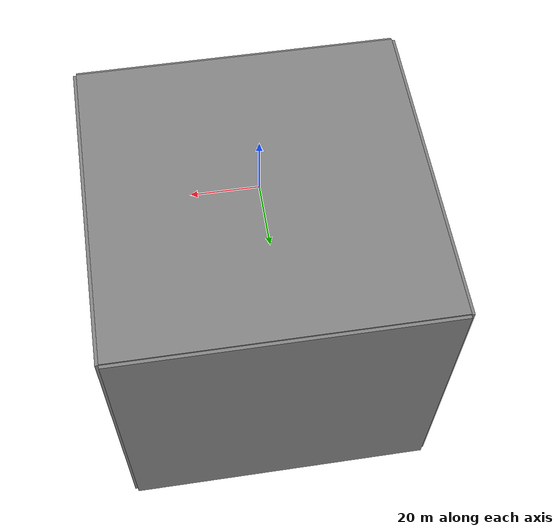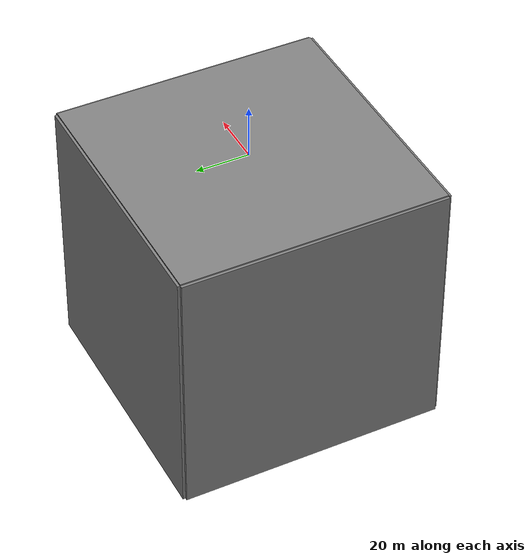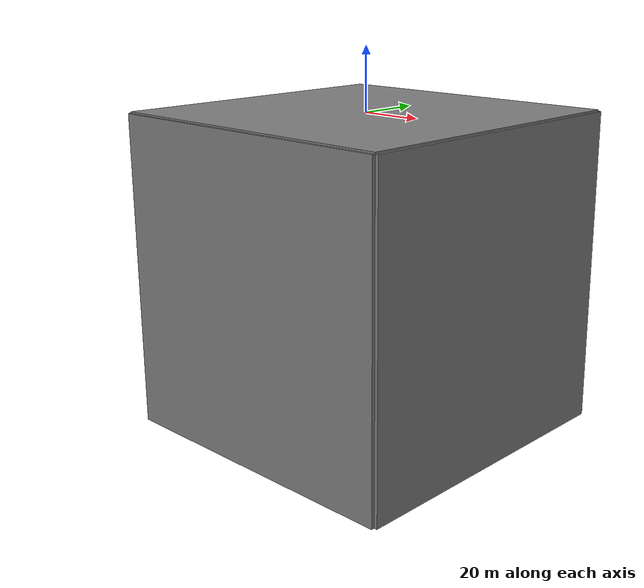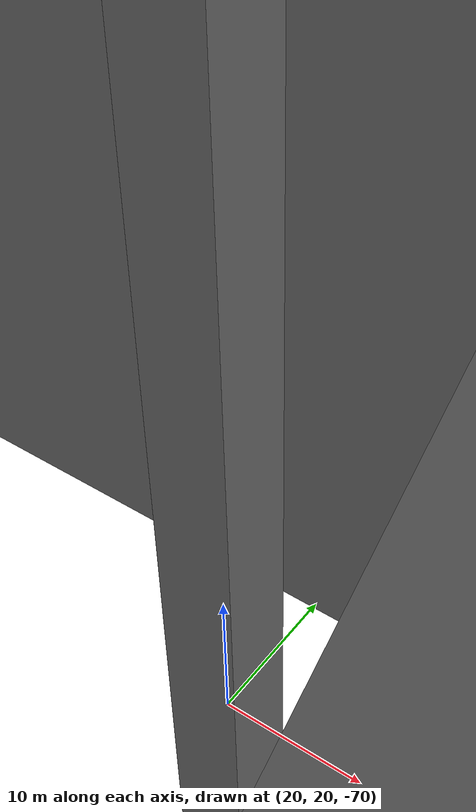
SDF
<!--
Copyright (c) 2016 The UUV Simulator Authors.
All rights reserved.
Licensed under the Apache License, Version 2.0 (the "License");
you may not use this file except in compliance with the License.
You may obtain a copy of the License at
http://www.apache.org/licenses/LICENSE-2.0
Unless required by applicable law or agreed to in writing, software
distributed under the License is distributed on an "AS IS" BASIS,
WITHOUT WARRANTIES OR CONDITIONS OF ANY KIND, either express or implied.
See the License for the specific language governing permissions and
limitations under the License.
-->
<sdf version="1.4">
 <world name="oceans_waves">
  <physics name="default_physics" default="true" type="ode">
   <max_step_size>0.002</max_step_size>
   <real_time_factor>1</real_time_factor>
   <real_time_update_rate>3000</real_time_update_rate>
  </physics>
  <scene>
   <ambient>0.01 0.01 0.01 1.0</ambient>
   <sky><clouds><speed>12</speed></clouds></sky>
   <shadows>1</shadows>
  </scene>
  <spherical_coordinates>
   <latitude_deg>56.71897669633431</latitude_deg>
   <longitude_deg>3.515625</longitude_deg>
  </spherical_coordinates>
  <light type="directional" name="sun1">
   <pose>50 0 150 0 0 0</pose>
   <diffuse>1 1 1 1</diffuse>
   <specular>.1 .1 .1 1</specular>
   <direction>0.3 0.3 -1</direction>
   <cast_shadows>false</cast_shadows>
  </light>
  <light type="directional" name="sun_diffuse">
   <pose>-50 0 -150 0 0 0</pose>
   <diffuse>0.6 0.6 0.6 1</diffuse>
   <specular>0 0 0 1</specular>
   <direction>-0.3 -0.3 -1</direction>
   <cast_shadows>false</cast_shadows>
  </light>
  <plugin name="underwater_current_plugin" filename="libuuv_underwater_current_ros_plugin.so">
   <namespace>hydrodynamics</namespace>
   <constant_current>
    <topic>current_velocity</topic>
    <velocity><mean>0</mean><min>0</min><max>5</max><mu>0.0</mu><noiseAmp>0.0</noiseAmp></velocity>
    <horizontal_angle>
     <mean>0</mean>
     <min>-3.141592653589793238</min>
     <max>3.141592653589793238</max>
     <mu>0.0</mu>
     <noiseAmp>0.0</noiseAmp>
    </horizontal_angle>
    <vertical_angle>
     <mean>0</mean>
     <min>-3.141592653589793238</min>
     <max>3.141592653589793238</max>
     <mu>0.0</mu>
     <noiseAmp>0.0</noiseAmp>
    </vertical_angle>
   </constant_current>
  </plugin>
  <plugin name="sc_interface" filename="libuuv_sc_ros_interface_plugin.so"/>
  <model name="rectangular_obstacle1">
   <pose>-50.5 0 -50 0 0 1.5708</pose>
   <link name="link">
    <collision name="collision">
     <geometry><box><size>100 1 100</size></box></geometry>
     <surface>
      <friction><ode><mu>1.0</mu><mu2>1.0</mu2></ode></friction>
      <bounce><restitution_coefficient>0.5</restitution_coefficient></bounce>
     </surface>
    </collision>
    <visual name="visual">
     <geometry><box><size>100 1 100</size></box></geometry>
     <material><ambient>0.5 0.5 0.5 1.0</ambient><diffuse>0.5 0.5 0.5 1.0</diffuse></material>
    </visual>
   </link>
   <static>true</static>
  </model>
  <model name="rectangular_obstacle2">
   <pose>50.5 0 -50 0 0 1.5708</pose>
   <link name="link">
    <collision name="collision">
     <geometry><box><size>100 1 100</size></box></geometry>
     <kinematic>1</kinematic>
     <surface>
      <friction><ode><mu>1.0</mu><mu2>1.0</mu2></ode></friction>
      <bounce><restitution_coefficient>0.5</restitution_coefficient></bounce>
     </surface>
    </collision>
    <visual name="visual">
     <geometry><box><size>100 1 100</size></box></geometry>
     <material><ambient>0.5 0.5 0.5 0</ambient><diffuse>0.5 0.5 0.5 0</diffuse></material>
    </visual>
   </link>
   <static>true</static>
  </model>
  <model name="rectangular_obstacle3">
   <pose>0 50.5 -50 0 0 0</pose>
   <link name="link">
    <collision name="collision">
     <geometry><box><size>100 1 100</size></box></geometry>
     <surface>
      <friction><ode><mu>1.0</mu><mu2>1.0</mu2></ode></friction>
      <bounce><restitution_coefficient>0.5</restitution_coefficient></bounce>
     </surface>
    </collision>
    <visual name="visual">
     <geometry><box><size>100 1 100</size></box></geometry>
     <material><ambient>0.5 0.5 0.5 1.0</ambient><diffuse>0.5 0.5 0.5 1.0</diffuse></material>
    </visual>
   </link>
   <static>true</static>
  </model>
  <model name="rectangular_obstacle4">
   <pose>0 -50.5 -50 0 0 0</pose>
   <link name="link">
    <collision name="collision">
     <geometry><box><size>100 1 100</size></box></geometry>
     <surface>
      <friction><ode><mu>1.0</mu><mu2>1.0</mu2></ode></friction>
      <bounce><restitution_coefficient>0.5</restitution_coefficient></bounce>
     </surface>
    </collision>
    <visual name="visual">
     <geometry><box><size>100 1 100</size></box></geometry>
     <material><ambient>0.5 0.5 0.5 1.0</ambient><diffuse>0.5 0.5 0.5 1.0</diffuse></material>
    </visual>
   </link>
   <static>true</static>
  </model>
  <model name="rectangular_obstacle5">
   <pose>0 0 0 1.5708 0 0</pose>
   <link name="link">
    <collision name="collision">
     <geometry><box><size>100 1 100</size></box></geometry>
     <surface>
      <friction><ode><mu>1.0</mu><mu2>1.0</mu2></ode></friction>
      <bounce><restitution_coefficient>0.5</restitution_coefficient></bounce>
     </surface>
    </collision>
    <visual name="visual">
     <geometry><box><size>100 1 100</size></box></geometry>
     <material><ambient>0.5 0.5 0.5 1.0</ambient><diffuse>0.5 0.5 0.5 1.0</diffuse></material>
    </visual>
   </link>
   <static>true</static>
  </model>
  <model name="cardboard_box_0">
   <pose>20 20 -50 0 0 1.5708</pose>
   <link name="link">
    <collision name="collision">
     <geometry><box><size>5 5 100</size></box></geometry>
     <surface>
      <friction><ode><mu>1.0</mu><mu2>1.0</mu2></ode></friction>
      <bounce><restitution_coefficient>0.5</restitution_coefficient></bounce>
     </surface>
    </collision>
    <visual name="visual">
     <geometry><box><size>5 5 100</size></box></geometry>
     <material><ambient>0.5 0.5 0.5 1.0</ambient><diffuse>0.5 0.5 0.5 1.0</diffuse></material>
    </visual>
   </link>
   <static>true</static>
  </model>
  <model name="cardboard_box_1">
   <pose>-20 -20 -50 0 0 1.5708</pose>
   <link name="link">
    <collision name="collision">
     <geometry><box><size>5 5 100</size></box></geometry>
     <surface>
      <friction><ode><mu>1.0</mu><mu2>1.0</mu2></ode></friction>
      <bounce><restitution_coefficient>0.5</restitution_coefficient></bounce>
     </surface>
    </collision>
    <visual name="visual">
     <geometry><box><size>5 5 100</size></box></geometry>
     <material><ambient>0.5 0.5 0.5 1.0</ambient><diffuse>0.5 0.5 0.5 1.0</diffuse></material>
    </visual>
   </link>
   <static>true</static>
  </model>
  <model name="cardboard_box_2">
   <pose>-20 20 -50 0 0 1.5708</pose>
   <link name="link">
    <collision name="collision">
     <geometry><box><size>5 5 100</size></box></geometry>
     <surface>
      <friction><ode><mu>1.0</mu><mu2>1.0</mu2></ode></friction>
      <bounce><restitution_coefficient>0.5</restitution_coefficient></bounce>
     </surface>
    </collision>
    <visual name="visual">
     <geometry><box><size>5 5 100</size></box></geometry>
     <material><ambient>0.5 0.5 0.5 1.0</ambient><diffuse>0.5 0.5 0.5 1.0</diffuse></material>
    </visual>
   </link>
   <static>true</static>
  </model>
  <model name="cardboard_box_3">
   <pose>20 -20 -50 0 0 1.5708</pose>
   <link name="link">
    <collision name="collision">
     <geometry><box><size>5 5 100</size></box></geometry>
     <surface>
      <friction><ode><mu>1.0</mu><mu2>1.0</mu2></ode></friction>
      <bounce><restitution_coefficient>0.5</restitution_coefficient></bounce>
     </surface>
    </collision>
    <visual name="visual">
     <geometry><box><size>5 5 100</size></box></geometry>
     <material><ambient>0.5 0.5 0.5 1.0</ambient><diffuse>0.5 0.5 0.5 1.0</diffuse></material>
    </visual>
   </link>
   <static>true</static>
  </model>
 </world>
</sdf>
